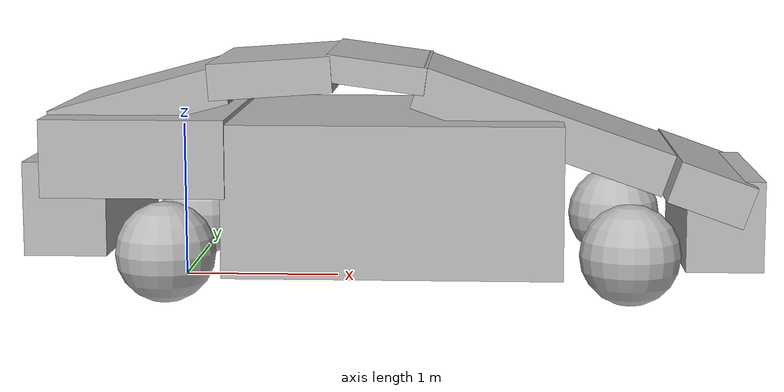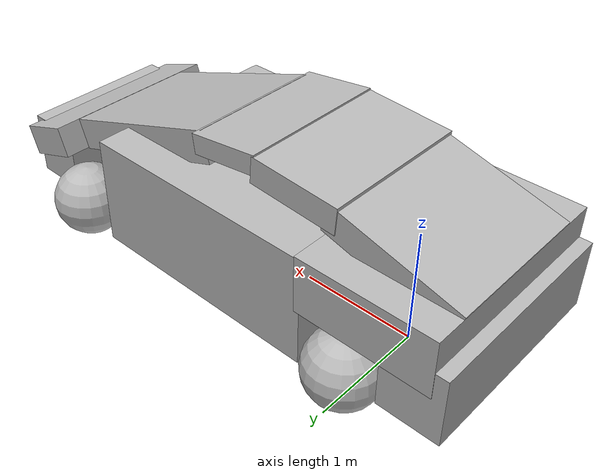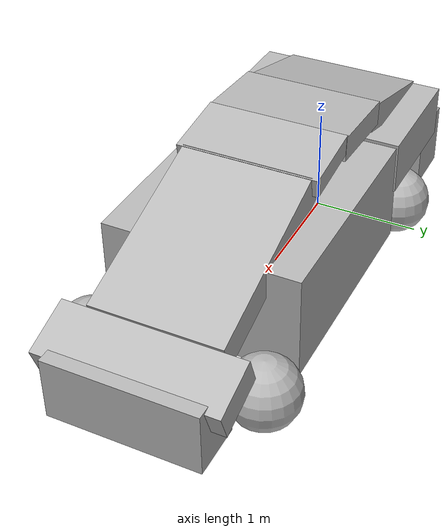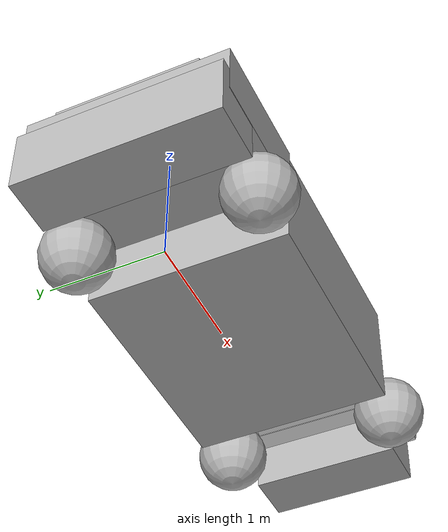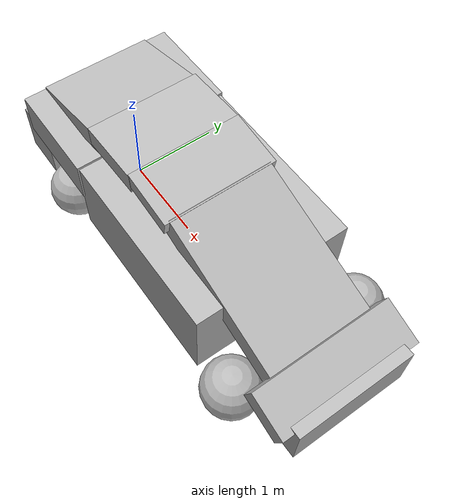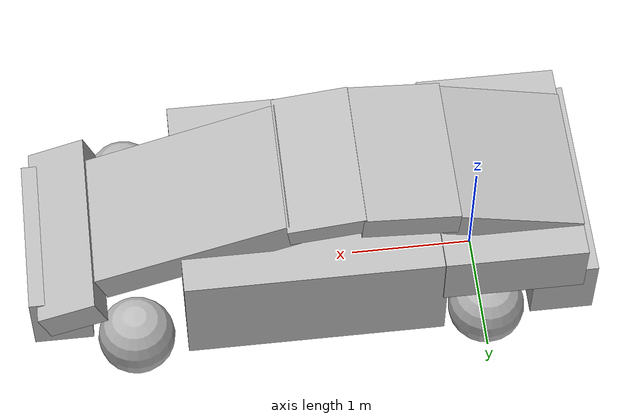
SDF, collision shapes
<sdf version='1.11'>
  <model name='prius'>
    <link name='base_link'>
      <inertial>
        <pose>0 0 0 0 0 0</pose>
        <mass>1</mass>
        <inertia>
          <ixx>0.001</ixx>
          <ixy>0</ixy>
          <ixz>0</ixz>
          <iyy>0.001</iyy>
          <iyz>0</iyz>
          <izz>0.001</izz>
        </inertia>
      </inertial>
    </link>
    <joint name='base_link_connection' type='revolute'>
      <pose relative_to='base_link'>1.45 0 0 0 0 1.5700000000000001</pose>
      <parent>base_link</parent>
      <child>chassis</child>
      <axis>
        <limit>
          <lower>0</lower>
          <upper>0</upper>
        </limit>
        <dynamics>
          <damping>0</damping>
          <friction>0</friction>
          <spring_reference>0</spring_reference>
          <spring_stiffness>0</spring_stiffness>
        </dynamics>
        <xyz>0 0 1</xyz>
      </axis>
      <physics>
        <ode>
          <limit>
            <cfm>0</cfm>
            <erp>0.20000000000000001</erp>
          </limit>
        </ode>
      </physics>
    </joint>
    <link name='chassis'>
      <pose relative_to='base_link_connection'>0 0 0 0 0 0</pose>
      <inertial>
        <pose>0 -0.002981818181818181 0.48529454545454531 0 0 1.5708</pose>
        <mass>1375</mass>
        <inertia>
          <ixx>2595.5180031097761</ixx>
          <ixy>0.0001890318568118954</ixy>
          <ixz>-0.94970763635722444</ixz>
          <iyy>657.15529137384988</iyy>
          <iyz>3.4884709365781031e-06</iyz>
          <izz>2749.8122608254548</izz>
        </inertia>
      </inertial>
      <collision name='chassis_collision'>
        <pose>0 0.050000000000000003 0.625 0 0 0</pose>
        <geometry>
          <box>
            <size>1.7525999999999999 2.1000000000000001 0.94999999999999996</size>
          </box>
        </geometry>
      </collision>
      <collision name='chassis_fixed_joint_lump__front_bumper_collision_1'>
        <pose>0 -2 0.45848800000000001 0 0 0</pose>
        <geometry>
          <box>
            <size>1.3372820000000001 0.47999999999999998 0.56669099999999994</size>
          </box>
        </geometry>
      </collision>
      <collision name='chassis_fixed_joint_lump__hood_collision_2'>
        <pose>0 -1.9008419999999999 0.67630500000000005 0.34124700000000013 0 0</pose>
        <geometry>
          <box>
            <size>1.5979680000000001 0.49310700000000002 0.26546799999999998</size>
          </box>
        </geometry>
      </collision>
      <collision name='chassis_fixed_joint_lump__windshield_collision_3'>
        <pose>0 -0.87510500000000002 1.032268 0.335476 0 0</pose>
        <geometry>
          <box>
            <size>1.1683809999999999 1.654253 0.27234700000000001</size>
          </box>
        </geometry>
      </collision>
      <collision name='chassis_fixed_joint_lump__top_front_collision_4'>
        <pose>0 0.16123599999999999 1.386042 0.13503000000000004 0 0</pose>
        <geometry>
          <box>
            <size>1.2791539999999999 0.62598799999999999 0.17186799999999999</size>
          </box>
        </geometry>
      </collision>
      <collision name='chassis_fixed_joint_lump__top_rear_collision_5'>
        <pose>0 0.81769599999999998 1.360069 -0.068997000000000003 0 0</pose>
        <geometry>
          <box>
            <size>1.2851300000000001 0.77118900000000001 0.22655700000000001</size>
          </box>
        </geometry>
      </collision>
      <collision name='chassis_fixed_joint_lump__rear_window_collision_6'>
        <pose>0 1.640531 1.1751259999999999 -0.26201699999999983 0 0</pose>
        <geometry>
          <box>
            <size>1.2678450000000001 1.116344 0.244286</size>
          </box>
        </geometry>
      </collision>
      <collision name='chassis_fixed_joint_lump__trunk_collision_7'>
        <pose>0 1.637059 0.88817999999999997 0 0 0</pose>
        <geometry>
          <box>
            <size>1.7880640000000001 1.1389879999999999 0.48274600000000001</size>
          </box>
        </geometry>
      </collision>
      <collision name='chassis_fixed_joint_lump__back_bumper_collision_8'>
        <pose>0 2.0544539999999998 0.57786999999999999 0 0 0</pose>
        <geometry>
          <box>
            <size>1.78165 0.51209300000000002 0.58142700000000003</size>
          </box>
        </geometry>
      </collision>
      <visual name='chassis_visual'>
        <pose>0 0 0 0 0 0</pose>
        <geometry>
          <mesh>
            <scale>0.01 0.01 0.01</scale>
            <uri>model://prius_vla/meshes/hybrid_body.obj</uri>
          </mesh>
        </geometry>
      </visual>

      <sensor name='back_camera_sensor' type='camera'>
        <update_rate>30</update_rate>
        <camera name='back_camera'>
          <horizontal_fov>1.3962634</horizontal_fov>
          <image>
            <width>800</width>
            <height>800</height>
            <format>R8G8B8</format>
          </image>
          <clip>
            <near>0.02</near>
            <far>300</far>
          </clip>
          <noise>
            <type>gaussian</type>
            <mean>0</mean>
            <stddev>0.0070000000000000001</stddev>
          </noise>
        </camera>
        <pose>0 1.45 1.3999999999999999 0 0.050000000000000003 1.5707</pose>
      </sensor>

      <sensor name='back_left_far_sonar_sensor' type='gpu_lidar'>
        <ray>
          <scan>
            <horizontal>
              <samples>1</samples>
              <resolution>1</resolution>
              <min_angle>0</min_angle>
              <max_angle>0</max_angle>
            </horizontal>
            <vertical>
              <samples>1</samples>
              <min_angle>0</min_angle>
              <max_angle>0</max_angle>
            </vertical>
          </scan>
          <range>
            <min>0.20000000000000001</min>
            <max>5</max>
            <resolution>0.10000000000000001</resolution>
          </range>
        </ray>
        <always_on>false</always_on>
        <update_rate>5</update_rate>
        <visualize>false</visualize>
        <pose>0.69999999999999996 2.3999999999999999 0.5 0 0 1.5707</pose>
      </sensor>

      <sensor name='back_left_middle_sonar_sensor' type='gpu_lidar'>
        <ray>
          <scan>
            <horizontal>
              <samples>1</samples>
              <resolution>1</resolution>
              <min_angle>0</min_angle>
              <max_angle>0</max_angle>
            </horizontal>
            <vertical>
              <samples>1</samples>
              <min_angle>0</min_angle>
              <max_angle>0</max_angle>
            </vertical>
          </scan>
          <range>
            <min>0.20000000000000001</min>
            <max>5</max>
            <resolution>0.10000000000000001</resolution>
          </range>
        </ray>
        <always_on>false</always_on>
        <update_rate>5</update_rate>
        <visualize>false</visualize>
        <pose>0.23999999999999999 2.3999999999999999 0.5 0 0 1.5707</pose>
      </sensor>

      <sensor name='back_right_far_sonar_sensor' type='gpu_lidar'>
        <ray>
          <scan>
            <horizontal>
              <samples>1</samples>
              <resolution>1</resolution>
              <min_angle>0</min_angle>
              <max_angle>0</max_angle>
            </horizontal>
            <vertical>
              <samples>1</samples>
              <min_angle>0</min_angle>
              <max_angle>0</max_angle>
            </vertical>
          </scan>
          <range>
            <min>0.20000000000000001</min>
            <max>5</max>
            <resolution>0.10000000000000001</resolution>
          </range>
        </ray>
        <always_on>false</always_on>
        <update_rate>5</update_rate>
        <visualize>false</visualize>
        <pose>-0.69999999999999996 2.3999999999999999 0.5 0 0 1.5707</pose>
      </sensor>

      <sensor name='back_right_middle_sonar_sensor' type='gpu_lidar'>
        <ray>
          <scan>
            <horizontal>
              <samples>1</samples>
              <resolution>1</resolution>
              <min_angle>0</min_angle>
              <max_angle>0</max_angle>
            </horizontal>
            <vertical>
              <samples>1</samples>
              <min_angle>0</min_angle>
              <max_angle>0</max_angle>
            </vertical>
          </scan>
          <range>
            <min>0.20000000000000001</min>
            <max>5</max>
            <resolution>0.10000000000000001</resolution>
          </range>
        </ray>
        <always_on>false</always_on>
        <update_rate>5</update_rate>
        <visualize>false</visualize>
        <pose>-0.23999999999999999 2.3999999999999999 0.5 0 0 1.5707</pose>
      </sensor>

      <sensor name='center_laser_sensor' type='gpu_lidar'>
        <ray>
          <scan>
            <horizontal>
              <samples>512</samples>
              <resolution>1</resolution>
              <min_angle>-3.1400000000000001</min_angle>
              <max_angle>3.1400000000000001</max_angle>
            </horizontal>
            <vertical>
              <samples>16</samples>
              <min_angle>-0.10000000000000001</min_angle>
              <max_angle>-0.34999999999999998</max_angle>
            </vertical>
          </scan>
          <range>
            <min>0.20000000000000001</min>
            <max>30</max>
            <resolution>0.01</resolution>
          </range>
        </ray>
        <always_on>true</always_on>
        <update_rate>30</update_rate>
        <visualize>false</visualize>
        <pose>0 0.40000000000000002 1.8 0 0 -1.5707</pose>
      </sensor>

      <sensor name='front_camera_sensor' type='camera'>
        <update_rate>30</update_rate>
        <camera name='front_camera'>
          <horizontal_fov>1.3962634</horizontal_fov>
          <image>
            <width>800</width>
            <height>800</height>
            <format>R8G8B8</format>
          </image>
          <clip>
            <near>0.02</near>
            <far>300</far>
          </clip>
          <noise>
            <type>gaussian</type>
            <mean>0</mean>
            <stddev>0.0070000000000000001</stddev>
          </noise>
        </camera>
        <pose>0 -0.40000000000000002 1.3999999999999999 0 0.050000000000000003 -1.5707</pose>
      </sensor>

      <sensor name='front_left_far_sonar_sensor' type='gpu_lidar'>
        <ray>
          <scan>
            <horizontal>
              <samples>1</samples>
              <resolution>1</resolution>
              <min_angle>0</min_angle>
              <max_angle>0</max_angle>
            </horizontal>
            <vertical>
              <samples>1</samples>
              <min_angle>0</min_angle>
              <max_angle>0</max_angle>
            </vertical>
          </scan>
          <range>
            <min>0.20000000000000001</min>
            <max>5</max>
            <resolution>0.10000000000000001</resolution>
          </range>
        </ray>
        <always_on>false</always_on>
        <update_rate>5</update_rate>
        <visualize>false</visualize>
        <pose>0.69999999999999996 -2.1000000000000001 0.5 0 0 -1.5707</pose>
      </sensor>

      <sensor name='front_left_laser_sensor' type='gpu_lidar'>
        <ray>
          <scan>
            <horizontal>
              <samples>640</samples>
              <resolution>1</resolution>
              <min_angle>-2.2688899999999999</min_angle>
              <max_angle>2.2688999999999999</max_angle>
            </horizontal>
            <vertical>
              <samples>1</samples>
              <min_angle>0</min_angle>
              <max_angle>0</max_angle>
            </vertical>
          </scan>
          <range>
            <min>0.20000000000000001</min>
            <max>30</max>
            <resolution>0.01</resolution>
          </range>
        </ray>
        <always_on>true</always_on>
        <update_rate>30</update_rate>
        <visualize>false</visualize>
        <pose>1 -2.2999999999999998 0.5 0 0.050000000000000003 0</pose>
      </sensor>

      <sensor name='front_left_middle_sonar_sensor' type='gpu_lidar'>
        <ray>
          <scan>
            <horizontal>
              <samples>1</samples>
              <resolution>1</resolution>
              <min_angle>0</min_angle>
              <max_angle>0</max_angle>
            </horizontal>
            <vertical>
              <samples>1</samples>
              <min_angle>0</min_angle>
              <max_angle>0</max_angle>
            </vertical>
          </scan>
          <range>
            <min>0.20000000000000001</min>
            <max>5</max>
            <resolution>0.10000000000000001</resolution>
          </range>
        </ray>
        <always_on>false</always_on>
        <update_rate>5</update_rate>
        <visualize>false</visualize>
        <pose>0.23999999999999999 -2.2999999999999998 0.5 0 0 -1.5707</pose>
      </sensor>

      <sensor name='front_right_far_sonar_sensor' type='gpu_lidar'>
        <ray>
          <scan>
            <horizontal>
              <samples>1</samples>
              <resolution>1</resolution>
              <min_angle>0</min_angle>
              <max_angle>0</max_angle>
            </horizontal>
            <vertical>
              <samples>1</samples>
              <min_angle>0</min_angle>
              <max_angle>0</max_angle>
            </vertical>
          </scan>
          <range>
            <min>0.20000000000000001</min>
            <max>5</max>
            <resolution>0.10000000000000001</resolution>
          </range>
        </ray>
        <always_on>false</always_on>
        <update_rate>5</update_rate>
        <visualize>false</visualize>
        <pose>-0.69999999999999996 -2.1000000000000001 0.5 0 0 -1.5707</pose>
      </sensor>

      <sensor name='front_right_laser_sensor' type='gpu_lidar'>
        <ray>
          <scan>
            <horizontal>
              <samples>640</samples>
              <resolution>1</resolution>
              <min_angle>-2.2688899999999999</min_angle>
              <max_angle>2.2688999999999999</max_angle>
            </horizontal>
            <vertical>
              <samples>1</samples>
              <min_angle>0</min_angle>
              <max_angle>0</max_angle>
            </vertical>
          </scan>
          <range>
            <min>0.20000000000000001</min>
            <max>30</max>
            <resolution>0.01</resolution>
          </range>
        </ray>
        <always_on>true</always_on>
        <update_rate>30</update_rate>
        <visualize>false</visualize>
        <pose>-1 -2.2999999999999998 0.5 -1.3569485479492456e-20 0.05000000000000001 3.1400000000000001</pose>
      </sensor>

      <sensor name='front_right_middle_sonar_sensor' type='gpu_lidar'>
        <ray>
          <scan>
            <horizontal>
              <samples>1</samples>
              <resolution>1</resolution>
              <min_angle>0</min_angle>
              <max_angle>0</max_angle>
            </horizontal>
            <vertical>
              <samples>1</samples>
              <min_angle>0</min_angle>
              <max_angle>0</max_angle>
            </vertical>
          </scan>
          <range>
            <min>0.20000000000000001</min>
            <max>5</max>
            <resolution>0.10000000000000001</resolution>
          </range>
        </ray>
        <always_on>false</always_on>
        <update_rate>5</update_rate>
        <visualize>false</visualize>
        <pose>-0.23999999999999999 -2.2999999999999998 0.5 0 0 -1.5707</pose>
      </sensor>

      <sensor name='left_camera_sensor' type='camera'>
        <update_rate>30</update_rate>
        <camera name='left_camera'>
          <horizontal_fov>1.3962634</horizontal_fov>
          <image>
            <width>800</width>
            <height>800</height>
            <format>R8G8B8</format>
          </image>
          <clip>
            <near>0.02</near>
            <far>300</far>
          </clip>
          <noise>
            <type>gaussian</type>
            <mean>0</mean>
            <stddev>0.0070000000000000001</stddev>
          </noise>
        </camera>
        <pose>1 -0.69999999999999996 1 0 0.050000000000000003 1</pose>
      </sensor>

      <sensor name='right_camera_sensor' type='camera'>
        <update_rate>30</update_rate>
        <camera name='right_camera'>
          <horizontal_fov>1.3962634</horizontal_fov>
          <image>
            <width>800</width>
            <height>800</height>
            <format>R8G8B8</format>
          </image>
          <clip>
            <near>0.02</near>
            <far>300</far>
          </clip>
          <noise>
            <type>gaussian</type>
            <mean>0</mean>
            <stddev>0.0070000000000000001</stddev>
          </noise>
        </camera>
        <pose>-1 -0.69999999999999996 1 0 0.050000000000000003 2.1415999999999999</pose>
      </sensor>
    </link>

    <joint name='front_left_steer_joint' type='revolute'>
      <pose relative_to='chassis'>0.76700000000000002 -1.4099999999999999 0.29999999999999999 0 0 0</pose>
      <parent>chassis</parent>
      <child>fl_axle</child>
      <axis>
        <xyz>0 0 1</xyz>
        <limit>
          <effort>10000000</effort>
          <velocity>1000000</velocity>
          <lower>-inf</lower>
          <upper>inf</upper>
        </limit>
        <dynamics>
          <spring_reference>0</spring_reference>
          <spring_stiffness>0</spring_stiffness>
        </dynamics>
      </axis>
    </joint>

    <link name='fl_axle'>
      <pose relative_to='front_left_steer_joint'>0 0 0 0 0 0</pose>
      <inertial>
        <pose>0 0 0 0 0 0</pose>
        <mass>1</mass>
        <inertia>
          <ixx>0.0040000000000000001</ixx>
          <ixy>0</ixy>
          <ixz>0</ixz>
          <iyy>0.0040000000000000001</iyy>
          <iyz>0</iyz>
          <izz>0.0040000000000000001</izz>
        </inertia>
      </inertial>
    </link>

    <joint name='front_left_wheel_joint' type='revolute'>
      <pose relative_to='fl_axle'>0 0 0 0 0 0</pose>
      <parent>fl_axle</parent>
      <child>front_left_wheel</child>
      <axis>
        <xyz>1 0 0</xyz>
        <limit>
          <lower>-inf</lower>
          <upper>inf</upper>
        </limit>
        <dynamics>
          <spring_reference>0</spring_reference>
          <spring_stiffness>0</spring_stiffness>
        </dynamics>
      </axis>
    </joint>

    <link name='front_left_wheel'>
      <pose relative_to='front_left_wheel_joint'>0 0 0 0 0 0</pose>
      <inertial>
        <pose>0 0 0 0 0 0</pose>
        <mass>11</mass>
        <inertia>
          <ixx>0.58631237999999997</ixx>
          <ixy>0</ixy>
          <ixz>0</ixz>
          <iyy>0.33552910000000002</iyy>
          <iyz>0</iyz>
          <izz>0.33552910000000002</izz>
        </inertia>
      </inertial>
      <collision name='front_left_wheel_collision_collision'>
        <pose>0 0 0 0 0 0</pose>
        <geometry>
          <sphere>
            <radius>0.31264999999999998</radius>
          </sphere>
        </geometry>
        <surface>
          <contact>
            <ode>
              <kp>100000000</kp>
              <min_depth>0.0050000000000000001</min_depth>
            </ode>
          </contact>
          <friction>
            <ode>
              <mu>0.90000000000000002</mu>
              <mu2>0.90000000000000002</mu2>
            </ode>
          </friction>
        </surface>
      </collision>
      <visual name='front_left_wheel_visual'>
        <pose>0 0 0 0 0 0</pose>
        <geometry>
          <mesh>
            <scale>0.01 0.01 0.01</scale>
            <uri>model://prius_vla/meshes/wheel.obj</uri>
          </mesh>
        </geometry>
      </visual>
    </link>

    <joint name='front_right_steer_joint' type='revolute'>
      <pose relative_to='chassis'>-0.76700000000000002 -1.4099999999999999 0.29999999999999999 0 0 0</pose>
      <parent>chassis</parent>
      <child>fr_axle</child>
      <axis>
        <xyz>0 0 1</xyz>
        <limit>
          <effort>10000000</effort>
          <velocity>1000000</velocity>
          <lower>-inf</lower>
          <upper>inf</upper>
        </limit>
        <dynamics>
          <spring_reference>0</spring_reference>
          <spring_stiffness>0</spring_stiffness>
        </dynamics>
      </axis>
    </joint>

    <link name='fr_axle'>
      <pose relative_to='front_right_steer_joint'>0 0 0 0 0 0</pose>
      <inertial>
        <pose>0 0 0 0 0 0</pose>
        <mass>1</mass>
        <inertia>
          <ixx>0.0040000000000000001</ixx>
          <ixy>0</ixy>
          <ixz>0</ixz>
          <iyy>0.0040000000000000001</iyy>
          <iyz>0</iyz>
          <izz>0.0040000000000000001</izz>
        </inertia>
      </inertial>
    </link>

    <joint name='front_right_wheel_joint' type='revolute'>
      <pose relative_to='fr_axle'>0 0 0 0 0 0</pose>
      <parent>fr_axle</parent>
      <child>front_right_wheel</child>
      <axis>
        <xyz>1 0 0</xyz>
        <limit>
          <lower>-inf</lower>
          <upper>inf</upper>
        </limit>
        <dynamics>
          <spring_reference>0</spring_reference>
          <spring_stiffness>0</spring_stiffness>
        </dynamics>
      </axis>
    </joint>

    <link name='front_right_wheel'>
      <pose relative_to='front_right_wheel_joint'>0 0 0 0 0 0</pose>
      <inertial>
        <pose>0 0 0 0 0 0</pose>
        <mass>11</mass>
        <inertia>
          <ixx>0.58631237999999997</ixx>
          <ixy>0</ixy>
          <ixz>0</ixz>
          <iyy>0.33552910000000002</iyy>
          <iyz>0</iyz>
          <izz>0.33552910000000002</izz>
        </inertia>
      </inertial>
      <collision name='front_right_wheel_collision_collision'>
        <pose>0 0 0 0 0 0</pose>
        <geometry>
          <sphere>
            <radius>0.31264999999999998</radius>
          </sphere>
        </geometry>
        <surface>
          <contact>
            <ode>
              <kp>100000000</kp>
              <min_depth>0.0050000000000000001</min_depth>
            </ode>
          </contact>
          <friction>
            <ode>
              <mu>0.90000000000000002</mu>
              <mu2>0.90000000000000002</mu2>
            </ode>
          </friction>
        </surface>
      </collision>
      <visual name='front_right_wheel_visual'>
        <pose>0 0 0 0 0 0</pose>
        <geometry>
          <mesh>
            <scale>0.01 0.01 0.01</scale>
            <uri>model://prius_vla/meshes/wheel.obj</uri>
          </mesh>
        </geometry>
      </visual>
    </link>

    <joint name='rear_left_wheel_joint' type='revolute'>
      <pose relative_to='chassis'>0.79300000000000004 1.45 0.29999999999999999 0 0 0</pose>
      <parent>chassis</parent>
      <child>rear_left_wheel</child>
      <axis>
        <xyz>1 0 0</xyz>
        <limit>
          <lower>-inf</lower>
          <upper>inf</upper>
        </limit>
        <dynamics>
          <spring_reference>0</spring_reference>
          <spring_stiffness>0</spring_stiffness>
        </dynamics>
      </axis>
    </joint>

    <link name='rear_left_wheel'>
      <pose relative_to='rear_left_wheel_joint'>0 0 0 0 0 0</pose>
      <inertial>
        <pose>0 0 0 0 0 0</pose>
        <mass>11</mass>
        <inertia>
          <ixx>0.58631237999999997</ixx>
          <ixy>0</ixy>
          <ixz>0</ixz>
          <iyy>0.33552910000000002</iyy>
          <iyz>0</iyz>
          <izz>0.33552910000000002</izz>
        </inertia>
      </inertial>
      <collision name='rear_left_wheel_collision_collision'>
        <pose>0 0 0 0 0 0</pose>
        <geometry>
          <sphere>
            <radius>0.31264999999999998</radius>
          </sphere>
        </geometry>
        <surface>
          <contact>
            <ode>
              <kp>100000000</kp>
              <min_depth>0.0050000000000000001</min_depth>
            </ode>
          </contact>
          <friction>
            <ode>
              <mu>0.90000000000000002</mu>
              <mu2>0.90000000000000002</mu2>
            </ode>
          </friction>
        </surface>
      </collision>
      <visual name='rear_left_wheel_visual'>
        <pose>0 0 0 0 0 0</pose>
        <geometry>
          <mesh>
            <scale>0.01 0.01 0.01</scale>
            <uri>model://prius_vla/meshes/wheel.obj</uri>
          </mesh>
        </geometry>
      </visual>
    </link>

    <joint name='rear_right_wheel_joint' type='revolute'>
      <pose relative_to='chassis'>-0.79300000000000004 1.45 0.29999999999999999 0 0 0</pose>
      <parent>chassis</parent>
      <child>rear_right_wheel</child>
      <axis>
        <xyz>1 0 0</xyz>
        <limit>
          <lower>-inf</lower>
          <upper>inf</upper>
        </limit>
        <dynamics>
          <spring_reference>0</spring_reference>
          <spring_stiffness>0</spring_stiffness>
        </dynamics>
      </axis>
    </joint>

    <link name='rear_right_wheel'>
      <pose relative_to='rear_right_wheel_joint'>0 0 0 0 0 0</pose>
      <inertial>
        <pose>0 0 0 0 0 0</pose>
        <mass>11</mass>
        <inertia>
          <ixx>0.58631237999999997</ixx>
          <ixy>0</ixy>
          <ixz>0</ixz>
          <iyy>0.33552910000000002</iyy>
          <iyz>0</iyz>
          <izz>0.33552910000000002</izz>
        </inertia>
      </inertial>
      <collision name='rear_right_wheel_collision_collision'>
        <pose>0 0 0 0 0 0</pose>
        <geometry>
          <sphere>
            <radius>0.31264999999999998</radius>
          </sphere>
        </geometry>
        <surface>
          <contact>
            <ode>
              <kp>100000000</kp>
              <min_depth>0.0050000000000000001</min_depth>
            </ode>
          </contact>
          <friction>
            <ode>
              <mu>0.90000000000000002</mu>
              <mu2>0.90000000000000002</mu2>
            </ode>
          </friction>
        </surface>
      </collision>
      <visual name='rear_right_wheel_visual'>
        <pose>0 0 0 0 0 0</pose>
        <geometry>
          <mesh>
            <scale>0.01 0.01 0.01</scale>
            <uri>model://prius_vla/meshes/wheel.obj</uri>
          </mesh>
        </geometry>
      </visual>
    </link>

    <joint name='steering_joint' type='revolute'>
      <pose relative_to='chassis'>0.357734 -0.62786799999999998 0.98824299999999998 -1.302101 0 0</pose>
      <parent>chassis</parent>
      <child>steering_wheel</child>
      <axis>
        <xyz>0 0 1</xyz>
        <limit>
          <effort>10000000</effort>
          <velocity>1000000</velocity>
          <lower>-inf</lower>
          <upper>inf</upper>
        </limit>
        <dynamics>
          <spring_reference>0</spring_reference>
          <spring_stiffness>0</spring_stiffness>
        </dynamics>
      </axis>
    </joint>

    <link name='steering_wheel'>
      <pose relative_to='steering_joint'>0 0 0 0 0 0</pose>
      <inertial>
        <pose>0 0 0 0 0 0</pose>
        <mass>1</mass>
        <inertia>
          <ixx>0.14583300000000001</ixx>
          <ixy>0</ixy>
          <ixz>0</ixz>
          <iyy>0.14583300000000001</iyy>
          <iyz>0</iyz>
          <izz>0.125</izz>
        </inertia>
      </inertial>
      <collision name='steering_wheel_collision'>
        <pose>0 0 0 0 0 0</pose>
        <geometry>
          <cylinder>
            <length>0.1</length>
            <radius>0.15</radius>
          </cylinder>
        </geometry>
      </collision>
      <visual name='steering_wheel_visual'>
        <pose>0 0 0 0 0 0</pose>
        <geometry>
          <mesh>
            <scale>0.01 0.01 0.01</scale>
            <uri>model://prius_vla/meshes/steering_wheel.obj</uri>
          </mesh>
        </geometry>
      </visual>
    </link>

   <plugin filename="gz-sim-ackermann-steering-system" name="gz::sim::systems::AckermannSteering">
  <left_steering_joint>front_left_steer_joint</left_steering_joint>
  <right_steering_joint>front_right_steer_joint</right_steering_joint>
  <left_joint>rear_left_wheel_joint</left_joint>
  <right_joint>rear_right_wheel_joint</right_joint>

  <wheel_separation>1.586</wheel_separation>
  <wheel_base>2.86</wheel_base>
  <wheel_radius>0.3126</wheel_radius>
  <steering_limit>0.7854</steering_limit>

  <min_velocity>-10.0</min_velocity>
  <max_velocity>30.0</max_velocity>
  <min_acceleration>-5.0</min_acceleration>
  <max_acceleration>5.0</max_acceleration>

  <topic>/model/prius_vla/cmd_vel</topic>
</plugin>
  </model>
</sdf>
